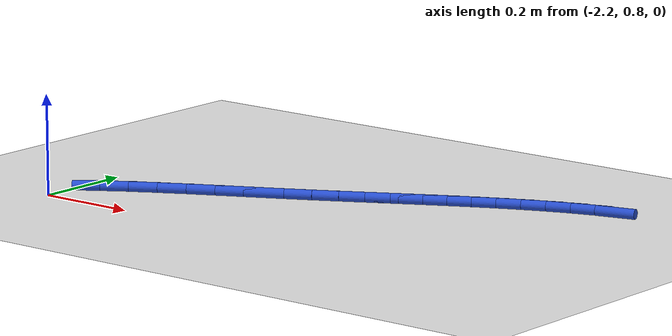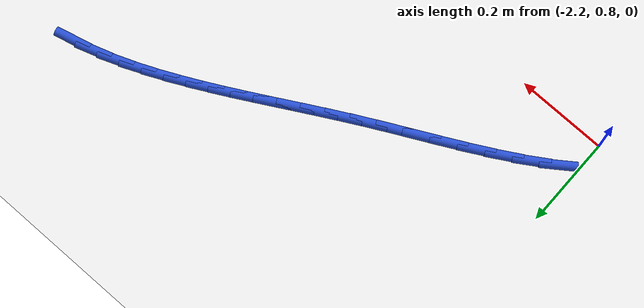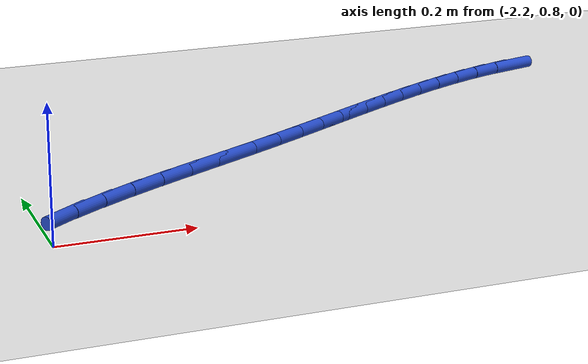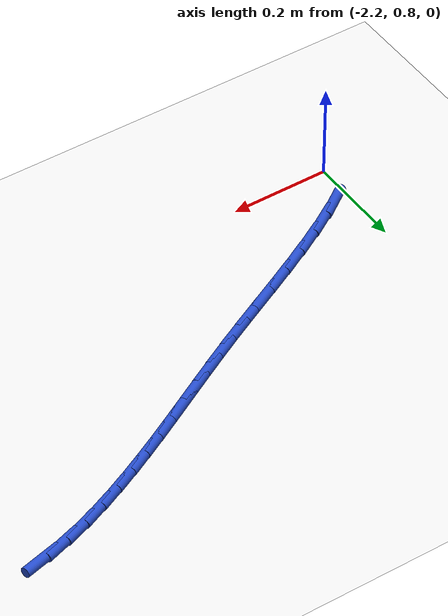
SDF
<sdf version="1.6">
 <world name="default">
  <model name="ground_plane">
   <static>1</static>
   <link name="link">
    <collision name="collision">
     <geometry><plane><normal>0 0 1</normal><size>100 100</size></plane></geometry>
     <surface><friction><ode><mu>100</mu><mu2>50</mu2></ode></friction></surface>
    </collision>
    <visual name="visual">
     <cast_shadows>0</cast_shadows>
     <geometry><plane><normal>0 0 1</normal><size>100 100</size></plane></geometry>
     <material>
      <script><uri>file://media/materials/scripts/gazebo.material</uri><name>Gazebo/WhiteGlow</name></script>
     </material>
    </visual>
   </link>
  </model>
  <model name="line">
   <link name="link_40">
    <pose>-1.2421309132966816 1.3466687356337397 0.01 0 1.57 0.2460404690639701</pose>
    <collision name="collision">
     <geometry><cylinder><radius>0.01</radius><length>0.08</length></cylinder></geometry>
    </collision>
    <visual name="visual">
     <material>
      <script><name>Gazebo/Blue</name><uri>file://media/materials/scripts/gazebo.material</uri></script>
     </material>
     <geometry><cylinder><radius>0.01</radius><length>0.08</length></cylinder></geometry>
    </visual>
   </link>
   <link name="link_41">
    <pose>-1.2900537725105432 1.3346339413795165 0.01 0 1.57 0.3152193739012006</pose>
    <collision name="collision">
     <geometry><cylinder><radius>0.01</radius><length>0.08</length></cylinder></geometry>
    </collision>
    <visual name="visual">
     <material>
      <script><name>Gazebo/Blue</name><uri>file://media/materials/scripts/gazebo.material</uri></script>
     </material>
     <geometry><cylinder><radius>0.01</radius><length>0.08</length></cylinder></geometry>
    </visual>
   </link>
   <link name="link_42">
    <pose>-1.3369421073820538 1.3193440244971821 0.01 0 1.57 0.3708777782731771</pose>
    <collision name="collision">
     <geometry><cylinder><radius>0.01</radius><length>0.08</length></cylinder></geometry>
    </collision>
    <visual name="visual">
     <material>
      <script><name>Gazebo/Blue</name><uri>file://media/materials/scripts/gazebo.material</uri></script>
     </material>
     <geometry><cylinder><radius>0.01</radius><length>0.08</length></cylinder></geometry>
    </visual>
   </link>
   <link name="link_43">
    <pose>-1.3827251073522688 1.3015402366046527 0.01 0 1.57 0.4135559494841368</pose>
    <collision name="collision">
     <geometry><cylinder><radius>0.01</radius><length>0.08</length></cylinder></geometry>
    </collision>
    <visual name="visual">
     <material>
      <script><name>Gazebo/Blue</name><uri>file://media/materials/scripts/gazebo.material</uri></script>
     </material>
     <geometry><cylinder><radius>0.01</radius><length>0.08</length></cylinder></geometry>
    </visual>
   </link>
   <link name="link_44">
    <pose>-1.427331961862243 1.2819638293198428 0.01 0 1.57 0.4439012300855681</pose>
    <collision name="collision">
     <geometry><cylinder><radius>0.01</radius><length>0.08</length></cylinder></geometry>
    </collision>
    <visual name="visual">
     <material>
      <script><name>Gazebo/Blue</name><uri>file://media/materials/scripts/gazebo.material</uri></script>
     </material>
     <geometry><cylinder><radius>0.01</radius><length>0.08</length></cylinder></geometry>
    </visual>
   </link>
   <link name="link_45">
    <pose>-1.4707045840906736 1.261337753399725 0.01 0 1.57 0.46633279466937677</pose>
    <collision name="collision">
     <geometry><cylinder><radius>0.01</radius><length>0.08</length></cylinder></geometry>
    </collision>
    <visual name="visual">
     <material>
      <script><name>Gazebo/Blue</name><uri>file://media/materials/scripts/gazebo.material</uri></script>
     </material>
     <geometry><cylinder><radius>0.01</radius><length>0.08</length></cylinder></geometry>
    </visual>
   </link>
   <link name="link_46">
    <pose>-1.513029591768719 1.2400329950989366 0.01 0 1.57 0.4843009011762244</pose>
    <collision name="collision">
     <geometry><cylinder><radius>0.01</radius><length>0.08</length></cylinder></geometry>
    </collision>
    <visual name="visual">
     <material>
      <script><name>Gazebo/Blue</name><uri>file://media/materials/scripts/gazebo.material</uri></script>
     </material>
     <geometry><cylinder><radius>0.01</radius><length>0.08</length></cylinder></geometry>
    </visual>
   </link>
   <link name="link_47">
    <pose>-1.5547143095187024 1.2181030925889966 0.01 0 1.57 0.4974584027793289</pose>
    <collision name="collision">
     <geometry><cylinder><radius>0.01</radius><length>0.08</length></cylinder></geometry>
    </collision>
    <visual name="visual">
     <material>
      <script><name>Gazebo/Blue</name><uri>file://media/materials/scripts/gazebo.material</uri></script>
     </material>
     <geometry><cylinder><radius>0.01</radius><length>0.08</length></cylinder></geometry>
    </visual>
   </link>
   <link name="link_48">
    <pose>-1.5961739701337823 1.1955902095271986 0.01 0 1.57 0.5055358548718742</pose>
    <collision name="collision">
     <geometry><cylinder><radius>0.01</radius><length>0.08</length></cylinder></geometry>
    </collision>
    <visual name="visual">
     <material>
      <script><name>Gazebo/Blue</name><uri>file://media/materials/scripts/gazebo.material</uri></script>
     </material>
     <geometry><cylinder><radius>0.01</radius><length>0.08</length></cylinder></geometry>
    </visual>
   </link>
   <link name="link_49">
    <pose>-1.637823806407116 1.172536509570838 0.01 0 1.57 0.5084938304719454</pose>
    <collision name="collision">
     <geometry><cylinder><radius>0.01</radius><length>0.08</length></cylinder></geometry>
    </collision>
    <visual name="visual">
     <material>
      <script><name>Gazebo/Blue</name><uri>file://media/materials/scripts/gazebo.material</uri></script>
     </material>
     <geometry><cylinder><radius>0.01</radius><length>0.08</length></cylinder></geometry>
    </visual>
   </link>
   <link name="link_50">
    <pose>-1.6800790511318628 1.1489841563772087 0.01 0 1.57 0.5065100277480074</pose>
    <collision name="collision">
     <geometry><cylinder><radius>0.01</radius><length>0.08</length></cylinder></geometry>
    </collision>
    <visual name="visual">
     <material>
      <script><name>Gazebo/Blue</name><uri>file://media/materials/scripts/gazebo.material</uri></script>
     </material>
     <geometry><cylinder><radius>0.01</radius><length>0.08</length></cylinder></geometry>
    </visual>
   </link>
   <link name="link_51">
    <pose>-1.7233549371011816 1.1249753136036051 0.01 0 1.57 0.499948718249997</pose>
    <collision name="collision">
     <geometry><cylinder><radius>0.01</radius><length>0.08</length></cylinder></geometry>
    </collision>
    <visual name="visual">
     <material>
      <script><name>Gazebo/Blue</name><uri>file://media/materials/scripts/gazebo.material</uri></script>
     </material>
     <geometry><cylinder><radius>0.01</radius><length>0.08</length></cylinder></geometry>
    </visual>
   </link>
   <link name="link_52">
    <pose>-1.7680666971082293 1.1005521449073217 0.01 0 1.57 0.4893184250599927</pose>
    <collision name="collision">
     <geometry><cylinder><radius>0.01</radius><length>0.08</length></cylinder></geometry>
    </collision>
    <visual name="visual">
     <material>
      <script><name>Gazebo/Blue</name><uri>file://media/materials/scripts/gazebo.material</uri></script>
     </material>
     <geometry><cylinder><radius>0.01</radius><length>0.08</length></cylinder></geometry>
    </visual>
   </link>
   <link name="link_53">
    <pose>-1.8146295639461658 1.075756813945653 0.01 0 1.57 0.47633355521950715</pose>
    <collision name="collision">
     <geometry><cylinder><radius>0.01</radius><length>0.08</length></cylinder></geometry>
    </collision>
    <visual name="visual">
     <material>
      <script><name>Gazebo/Blue</name><uri>file://media/materials/scripts/gazebo.material</uri></script>
     </material>
     <geometry><cylinder><radius>0.01</radius><length>0.08</length></cylinder></geometry>
    </visual>
   </link>
   <link name="link_54">
    <pose>-1.8633533335800454 1.0506173211661138 0.01 0 1.57 0.469280866320584</pose>
    <collision name="collision">
     <geometry><cylinder><radius>0.01</radius><length>0.08</length></cylinder></geometry>
    </collision>
    <visual name="visual">
     <material>
      <script><name>Gazebo/Blue</name><uri>file://media/materials/scripts/gazebo.material</uri></script>
     </material>
     <geometry><cylinder><radius>0.01</radius><length>0.08</length></cylinder></geometry>
    </visual>
   </link>
   <link name="link_55">
    <pose>-1.913763425362137 1.0250563025936206 0.01 0 1.57 0.47100540974582433</pose>
    <collision name="collision">
     <geometry><cylinder><radius>0.01</radius><length>0.08</length></cylinder></geometry>
    </collision>
    <visual name="visual">
     <material>
      <script><name>Gazebo/Blue</name><uri>file://media/materials/scripts/gazebo.material</uri></script>
     </material>
     <geometry><cylinder><radius>0.01</radius><length>0.08</length></cylinder></geometry>
    </visual>
   </link>
   <link name="link_56">
    <pose>-1.9650316802480123 0.9989488984672614 0.01 0 1.57 0.4811241999632559</pose>
    <collision name="collision">
     <geometry><cylinder><radius>0.01</radius><length>0.08</length></cylinder></geometry>
    </collision>
    <visual name="visual">
     <material>
      <script><name>Gazebo/Blue</name><uri>file://media/materials/scripts/gazebo.material</uri></script>
     </material>
     <geometry><cylinder><radius>0.01</radius><length>0.08</length></cylinder></geometry>
    </visual>
   </link>
   <link name="link_57">
    <pose>-2.0163282276544376 0.9721700191170536 0.01 0 1.57 0.4998461972336203</pose>
    <collision name="collision">
     <geometry><cylinder><radius>0.01</radius><length>0.08</length></cylinder></geometry>
    </collision>
    <visual name="visual">
     <material>
      <script><name>Gazebo/Blue</name><uri>file://media/materials/scripts/gazebo.material</uri></script>
     </material>
     <geometry><cylinder><radius>0.01</radius><length>0.08</length></cylinder></geometry>
    </visual>
   </link>
   <link name="link_58">
    <pose>-2.0668231969981807 0.9445945748730139 0.01 0 1.57 0.5279733349756276</pose>
    <collision name="collision">
     <geometry><cylinder><radius>0.01</radius><length>0.08</length></cylinder></geometry>
    </collision>
    <visual name="visual">
     <material>
      <script><name>Gazebo/Blue</name><uri>file://media/materials/scripts/gazebo.material</uri></script>
     </material>
     <geometry><cylinder><radius>0.01</radius><length>0.08</length></cylinder></geometry>
    </visual>
   </link>
   <link name="link_59">
    <pose>-2.1156867176960095 0.9160974760651602 0.01 0 1.57 0.5669618666240649</pose>
    <collision name="collision">
     <geometry><cylinder><radius>0.01</radius><length>0.08</length></cylinder></geometry>
    </collision>
    <visual name="visual">
     <material>
      <script><name>Gazebo/Blue</name><uri>file://media/materials/scripts/gazebo.material</uri></script>
     </material>
     <geometry><cylinder><radius>0.01</radius><length>0.08</length></cylinder></geometry>
    </visual>
   </link>
   <link name="link_60">
    <pose>-2.1620889191646917 0.88655363302351 0.01 0 1.57 0.6190519173948954</pose>
    <collision name="collision">
     <geometry><cylinder><radius>0.01</radius><length>0.08</length></cylinder></geometry>
    </collision>
    <visual name="visual">
     <material>
      <script><name>Gazebo/Blue</name><uri>file://media/materials/scripts/gazebo.material</uri></script>
     </material>
     <geometry><cylinder><radius>0.01</radius><length>0.08</length></cylinder></geometry>
    </visual>
   </link>
  </model>
 </world>
</sdf>
